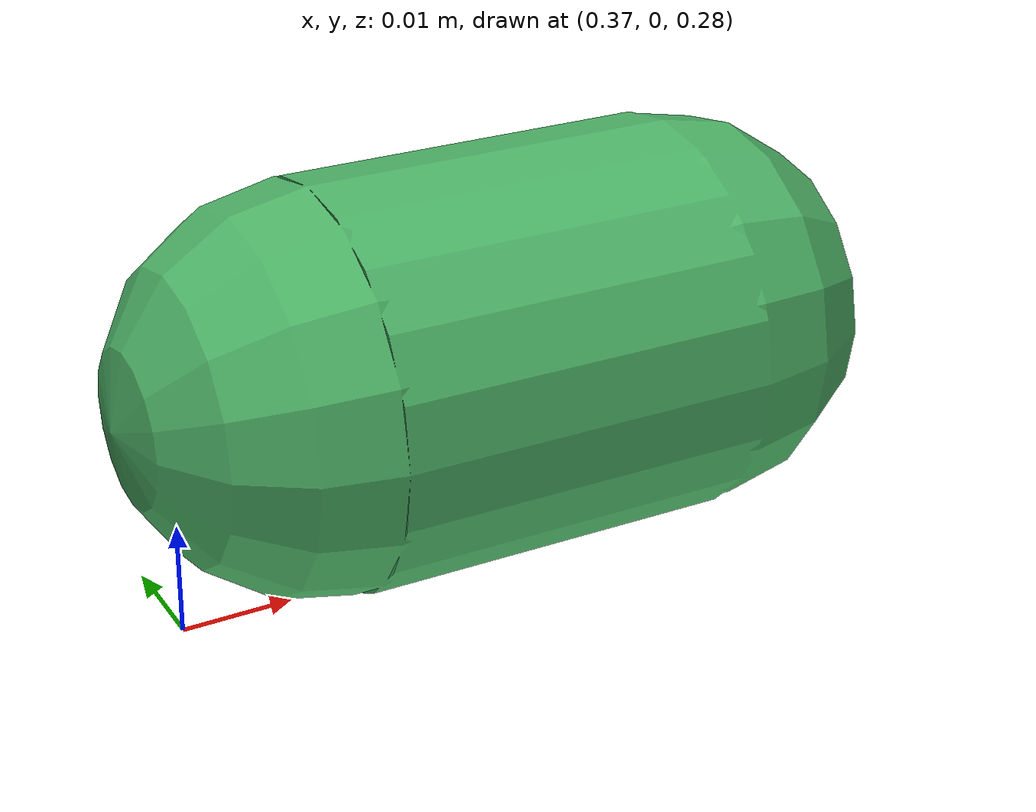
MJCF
<?xml version="1.0"?>
<mujoco model="ellipsoid">
  <worldbody>
    <body name="ellipsoid" pos="0.4 0 0.3">
      <freejoint name="ellipsoid_joint"/>
      <!-- Capsule approximates the elongated ellipsoid (warp ellipsoid-collision
           segfaults on sm_80/A100). Long axis x, radius = short semi-axis. -->
      <geom type="capsule" name="ellipsoid_geom" fromto="-0.017 0 0 0.017 0 0" size="0.018" mass="0.05"
            rgba="0.3 0.7 0.4 1.0" condim="6" friction="1 0.03 0.003"
            contype="1" conaffinity="1" solref="0.01 1"/>
      <site name="object_site" pos="0 0 0" size="0.01" rgba="1 0 0 1"/>
    </body>
  </worldbody>
</mujoco>
